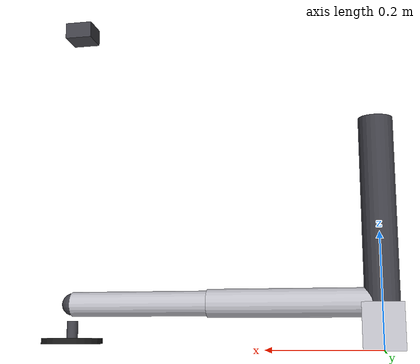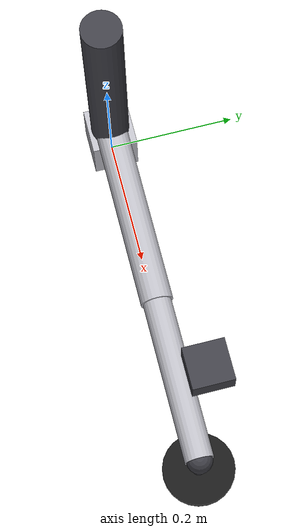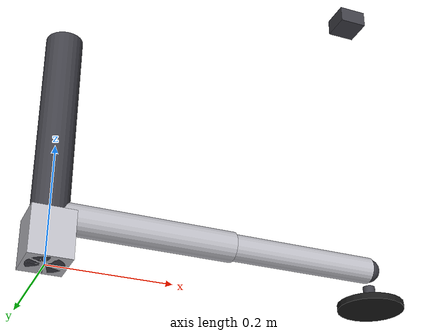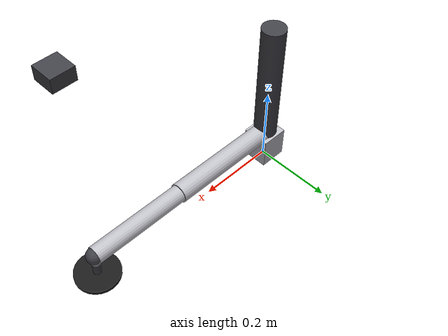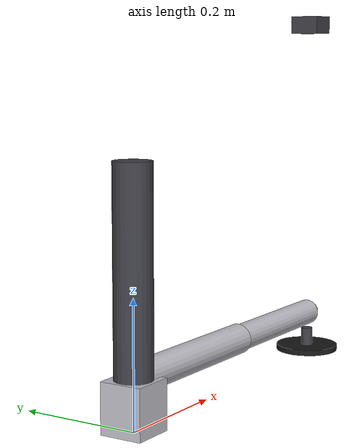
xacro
<?xml version="1.0"?>
<robot xmlns:xacro="http://www.ros.org/wiki/xacro" name="scara_arm">

  <xacro:include filename="$(find wafer_description)/urdf/properties.xacro"/>
  <xacro:include filename="$(find wafer_description)/urdf/end_effector.xacro"/>
  <xacro:include filename="$(find wafer_description)/urdf/scara_arm.gazebo.xacro"/>

  <!-- ║  WORLD / BASE FOOTPRINT              ║ -->
  <link name="world"/>

  <joint name="world_to_base" type="fixed">
    <parent link="world"/>
    <child  link="base_link"/>
    <origin xyz="0 0 0" rpy="0 0 0"/>
  </joint>

  <!-- Base column (Z-lift housing) -->
  <link name="base_link">
    <visual>
      <origin xyz="0 0 ${z_column_height/2}" rpy="0 0 0"/>
      <geometry><cylinder radius="${z_column_radius}" length="${z_column_height}"/></geometry>
      <material name="dark_aluminium"/>
    </visual>
    <collision>
      <origin xyz="0 0 ${z_column_height/2}" rpy="0 0 0"/>
      <geometry><cylinder radius="${z_column_radius}" length="${z_column_height}"/></geometry>
    </collision>
    <inertial>
      <mass value="5.0"/>
      <inertia ixx="0.07" ixy="0" ixz="0" iyy="0.07" iyz="0" izz="0.003"/>
    </inertial>
  </link>

  <!-- ── Prismatic Z joint (lifts the entire arm up/down) ─────────── -->
  <joint name="joint_z" type="prismatic">
    <parent link="base_link"/>
    <child  link="z_carriage"/>
    <origin xyz="0 0 0" rpy="0 0 0"/>
    <axis   xyz="0 0 1"/>
    <limit lower="${j4_lower}" upper="${j4_upper}"
           velocity="${j4_vel}" effort="${j4_effort}"/>
    <dynamics damping="5.0" friction="0.5"/>
  </joint>

  <!-- Z carriage (slider block) -->
  <link name="z_carriage">
    <visual>
      <origin xyz="0 0 ${base_height/2}" rpy="0 0 0"/>
      <geometry><box size="0.07 0.07 ${base_height}"/></geometry>
      <material name="light_aluminium"/>
    </visual>
    <collision>
      <origin xyz="0 0 ${base_height/2}" rpy="0 0 0"/>
      <geometry><box size="0.07 0.07 ${base_height}"/></geometry>
    </collision>
    <inertial>
      <mass value="1.0"/>
      <inertia ixx="0.002" ixy="0" ixz="0" iyy="0.002" iyz="0" izz="0.001"/>
    </inertial>
  </link>

  <!-- ── Joint 1: base rotation ────────────────────────────────────── -->
  <joint name="joint_1" type="revolute">
    <parent link="z_carriage"/>
    <child  link="link_1"/>
    <origin xyz="0 0 ${base_height}" rpy="0 0 0"/>
    <axis   xyz="0 0 1"/>
    <limit lower="${j1_lower}" upper="${j1_upper}"
           velocity="${j1_vel}" effort="${j1_effort}"/>
    <dynamics damping="0.5" friction="0.1"/>
  </joint>

  <!-- Link 1: shoulder–elbow arm -->
  <link name="link_1">
    <visual>
      <origin xyz="${link1_length/2} 0 0" rpy="0 ${pi/2} 0"/>
      <geometry><cylinder radius="${link1_radius}" length="${link1_length}"/></geometry>
      <material name="light_aluminium"/>
    </visual>
    <collision>
      <origin xyz="${link1_length/2} 0 0" rpy="0 ${pi/2} 0"/>
      <geometry><cylinder radius="${link1_radius}" length="${link1_length}"/></geometry>
    </collision>
    <inertial>
      <mass value="1.5"/>
      <inertia ixx="0.001" ixy="0" ixz="0" iyy="0.012" iyz="0" izz="0.012"/>
    </inertial>
  </link>

  <!-- ── Joint 2: elbow rotation ───────────────────────────────────── -->
  <joint name="joint_2" type="revolute">
    <parent link="link_1"/>
    <child  link="link_2"/>
    <origin xyz="${link1_length} 0 0" rpy="0 0 0"/>
    <axis   xyz="0 0 1"/>
    <limit lower="${j2_lower}" upper="${j2_upper}"
           velocity="${j2_vel}" effort="${j2_effort}"/>
    <dynamics damping="0.3" friction="0.05"/>
  </joint>

  <!-- Link 2: elbow–wrist arm -->
  <link name="link_2">
    <visual>
      <origin xyz="${link2_length/2} 0 0" rpy="0 ${pi/2} 0"/>
      <geometry><cylinder radius="${link2_radius}" length="${link2_length}"/></geometry>
      <material name="light_aluminium"/>
    </visual>
    <collision>
      <origin xyz="${link2_length/2} 0 0" rpy="0 ${pi/2} 0"/>
      <geometry><cylinder radius="${link2_radius}" length="${link2_length}"/></geometry>
    </collision>
    <inertial>
      <mass value="1.0"/>
      <inertia ixx="0.0005" ixy="0" ixz="0" iyy="0.006" iyz="0" izz="0.006"/>
    </inertial>
  </link>

  <!-- ── Joint 3: wrist / EE rotation ──────────────────────────────── -->
  <joint name="joint_3" type="revolute">
    <parent link="link_2"/>
    <child  link="ee_base"/>
    <origin xyz="${link2_length} 0 0" rpy="0 0 0"/>
    <axis   xyz="0 0 1"/>
    <limit lower="${j3_lower}" upper="${j3_upper}"
           velocity="${j3_vel}" effort="${j3_effort}"/>
    <dynamics damping="0.1" friction="0.02"/>
  </joint>

  <!-- EE base (wrist body) — end effector visual defined in end_effector.xacro -->
  <link name="ee_base">
    <visual>
      <origin xyz="0 0 0" rpy="0 0 0"/>
      <geometry><sphere radius="0.020"/></geometry>
      <material name="dark_aluminium"/>
    </visual>
    <collision>
      <origin xyz="0 0 0" rpy="0 0 0"/>
      <geometry><sphere radius="0.020"/></geometry>
    </collision>
    <inertial>
      <mass value="0.3"/>
      <inertia ixx="0.00005" ixy="0" ixz="0" iyy="0.00005" iyz="0" izz="0.00005"/>
    </inertial>
  </link>

  <!-- Attach vacuum pad end-effector (defined in end_effector.xacro) -->
  <xacro:vacuum_pad parent="ee_base" prefix=""/>

  <!-- ── Tool Center Point (TCP) frame ─────────────────────────────── -->
  <joint name="tcp_joint" type="fixed">
    <parent link="ee_base"/>
    <child  link="tcp"/>
    <origin xyz="0 0 -${ee_thickness}" rpy="0 0 0"/>
  </joint>
  <link name="tcp"/>

</robot>

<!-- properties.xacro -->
<robot xmlns:xacro="http://www.ros.org/wiki/xacro" name="waferflow_properties">
  <!--
    Properties (parameters) for the WaferFlow SCARA arm.
    Edit these to change geometry without touching the main URDF files.
  -->

  <!-- ── Link dimensions ─────────────────────────────────────────── -->
  <xacro:property name="base_radius"      value="0.075"/>
  <xacro:property name="base_height"      value="0.080"/>
  <xacro:property name="link1_length"     value="0.300"/>   <!-- shoulder–elbow -->
  <xacro:property name="link1_radius"     value="0.025"/>
  <xacro:property name="link2_length"     value="0.250"/>   <!-- elbow–wrist -->
  <xacro:property name="link2_radius"     value="0.022"/>
  <xacro:property name="ee_radius"        value="0.055"/>   <!-- vacuum pad radius -->
  <xacro:property name="ee_thickness"     value="0.010"/>
  <xacro:property name="z_column_height"  value="0.400"/>   <!-- prismatic stroke -->
  <xacro:property name="z_column_radius"  value="0.030"/>

  <!-- ── Wafer disc (100 mm diameter, 2 mm thick) ─────────────────── -->
  <xacro:property name="wafer_radius"     value="0.050"/>   <!-- 100 mm dia -->
  <xacro:property name="wafer_thickness"  value="0.002"/>

  <!-- ── Joint limits ─────────────────────────────────────────────── -->
  <!-- Joint 1: base rotation (full 360 allowed in sim) -->
  <xacro:property name="j1_lower"   value="-3.14159"/>
  <xacro:property name="j1_upper"   value=" 3.14159"/>
  <xacro:property name="j1_vel"     value="3.0"/>           <!-- rad/s -->
  <xacro:property name="j1_effort"  value="50.0"/>

  <!-- Joint 2: elbow rotation -->
  <xacro:property name="j2_lower"   value="-2.35619"/>      <!-- -135 deg -->
  <xacro:property name="j2_upper"   value=" 2.35619"/>
  <xacro:property name="j2_vel"     value="3.0"/>
  <xacro:property name="j2_effort"  value="30.0"/>

  <!-- Joint 3: end-effector rotation (wrist) -->
  <xacro:property name="j3_lower"   value="-3.14159"/>
  <xacro:property name="j3_upper"   value=" 3.14159"/>
  <xacro:property name="j3_vel"     value="6.0"/>
  <xacro:property name="j3_effort"  value="10.0"/>

  <!-- Joint 4: prismatic Z lift -->
  <xacro:property name="j4_lower"   value="0.0"/>
  <xacro:property name="j4_upper"   value="0.35"/>           <!-- 350 mm stroke -->
  <xacro:property name="j4_vel"     value="0.3"/>
  <xacro:property name="j4_effort"  value="100.0"/>

  <!-- ── Material colors ───────────────────────────────────────────── -->
  <material name="dark_aluminium">
    <color rgba="0.25 0.25 0.28 1.0"/>
  </material>
  <material name="light_aluminium">
    <color rgba="0.75 0.75 0.78 1.0"/>
  </material>
  <material name="wafer_grey">
    <color rgba="0.55 0.55 0.60 0.9"/>
  </material>
  <material name="vacuum_pad_black">
    <color rgba="0.10 0.10 0.10 1.0"/>
  </material>
  <material name="cassette_blue">
    <color rgba="0.20 0.30 0.60 1.0"/>
  </material>
  <material name="stocker_green">
    <color rgba="0.15 0.50 0.25 1.0"/>
  </material>

</robot>

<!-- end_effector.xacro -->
<robot xmlns:xacro="http://www.ros.org/wiki/xacro">

  <xacro:macro name="vacuum_pad" params="parent prefix">

    <!-- Fixed joint: ee_base → vacuum pad stem -->
    <joint name="${prefix}ee_stem_joint" type="fixed">
      <parent link="${parent}"/>
      <child  link="${prefix}ee_stem"/>
      <origin xyz="0 0 -0.030" rpy="0 0 0"/>
    </joint>

    <link name="${prefix}ee_stem">
      <visual>
        <origin xyz="0 0 -0.015" rpy="0 0 0"/>
        <geometry><cylinder radius="0.010" length="0.030"/></geometry>
        <material name="dark_aluminium"/>
      </visual>
      <collision>
        <origin xyz="0 0 -0.015" rpy="0 0 0"/>
        <geometry><cylinder radius="0.010" length="0.030"/></geometry>
      </collision>
      <inertial>
        <mass value="0.05"/>
        <inertia ixx="0.000002" ixy="0" ixz="0" iyy="0.000002" iyz="0" izz="0.000001"/>
      </inertial>
    </link>

    <!-- Fixed joint: stem → vacuum pad disc -->
    <joint name="${prefix}ee_pad_joint" type="fixed">
      <parent link="${prefix}ee_stem"/>
      <child  link="${prefix}ee_pad"/>
      <origin xyz="0 0 -0.030" rpy="0 0 0"/>
    </joint>

    <link name="${prefix}ee_pad">
      <visual>
        <origin xyz="0 0 -${ee_thickness/2}" rpy="0 0 0"/>
        <geometry><cylinder radius="${ee_radius}" length="${ee_thickness}"/></geometry>
        <material name="vacuum_pad_black"/>
      </visual>
      <collision>
        <origin xyz="0 0 -${ee_thickness/2}" rpy="0 0 0"/>
        <geometry><cylinder radius="${ee_radius}" length="${ee_thickness}"/></geometry>
      </collision>
      <inertial>
        <mass value="0.10"/>
        <inertia ixx="0.00007" ixy="0" ixz="0" iyy="0.00007" iyz="0" izz="0.00014"/>
      </inertial>
    </link>

  </xacro:macro>

</robot>

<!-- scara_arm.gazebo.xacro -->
<robot xmlns:xacro="http://www.ros.org/wiki/xacro">

  <!-- ── ros2_control block: Ignition hardware interface ──────────────── -->
  <ros2_control name="WaferFlowSystem" type="system">
    <hardware>
      <plugin>ign_ros2_control/IgnitionSystem</plugin>
    </hardware>

    <joint name="joint_1">
      <command_interface name="position">
        <param name="min">${j1_lower}</param>
        <param name="max">${j1_upper}</param>
      </command_interface>
      <state_interface name="position"/>
      <state_interface name="velocity"/>
      <state_interface name="effort"/>
    </joint>

    <joint name="joint_2">
      <command_interface name="position">
        <param name="min">${j2_lower}</param>
        <param name="max">${j2_upper}</param>
      </command_interface>
      <state_interface name="position"/>
      <state_interface name="velocity"/>
      <state_interface name="effort"/>
    </joint>

    <joint name="joint_3">
      <command_interface name="position">
        <param name="min">${j3_lower}</param>
        <param name="max">${j3_upper}</param>
      </command_interface>
      <state_interface name="position"/>
      <state_interface name="velocity"/>
      <state_interface name="effort"/>
    </joint>

    <joint name="joint_z">
      <command_interface name="position">
        <param name="min">${j4_lower}</param>
        <param name="max">${j4_upper}</param>
      </command_interface>
      <state_interface name="position"/>
      <state_interface name="velocity"/>
      <state_interface name="effort"/>
    </joint>
  </ros2_control>

  <!-- ── Ignition Gazebo: ign_ros2_control plugin ─────────────────────── -->
  <gazebo>
    <plugin filename="libign_ros2_control-system.so"
            name="ign_ros2_control::IgnitionROS2ControlPlugin">
      <parameters>$(find wafer_moveit_config)/config/ros2_controllers.yaml</parameters>
      <ros>
        <namespace>/</namespace>
      </ros>
    </plugin>
  </gazebo>

  <!-- ── Overhead camera above cassette slot A1 ────────────────────────── -->
  <link name="overhead_camera_link">
    <visual>
      <origin xyz="0 0 0" rpy="0 0 0"/>
      <geometry><box size="0.05 0.05 0.03"/></geometry>
      <material name="dark_aluminium"/>
    </visual>
  </link>

  <joint name="world_to_camera" type="fixed">
    <parent link="world"/>
    <child  link="overhead_camera_link"/>
    <!-- Positioned 0.6 m above cassette slot A1 center (x=0.55, y=0.0) -->
    <origin xyz="0.55 0.0 0.60" rpy="0 ${pi} 0"/>
  </joint>

  <gazebo reference="overhead_camera_link">
    <sensor name="overhead_camera" type="camera">
      <always_on>true</always_on>
      <update_rate>30</update_rate>
      <topic>/waferflow/camera/image_raw</topic>
      <camera>
        <horizontal_fov>0.8</horizontal_fov>
        <image>
          <width>640</width>
          <height>480</height>
          <format>R8G8B8</format>
        </image>
        <clip>
          <near>0.01</near>
          <far>2.0</far>
        </clip>
      </camera>
    </sensor>
  </gazebo>

  <!-- ── Gazebo material overrides ─────────────────────────────────────── -->
  <gazebo reference="base_link">
    <material>Gazebo/DarkGrey</material>
  </gazebo>
  <gazebo reference="z_carriage">
    <material>Gazebo/Grey</material>
  </gazebo>
  <gazebo reference="link_1">
    <material>Gazebo/White</material>
  </gazebo>
  <gazebo reference="link_2">
    <material>Gazebo/White</material>
  </gazebo>
  <gazebo reference="ee_base">
    <material>Gazebo/DarkGrey</material>
  </gazebo>
  <gazebo reference="ee_stem">
    <material>Gazebo/DarkGrey</material>
  </gazebo>
  <gazebo reference="ee_pad">
    <material>Gazebo/Black</material>
  </gazebo>

</robot>
